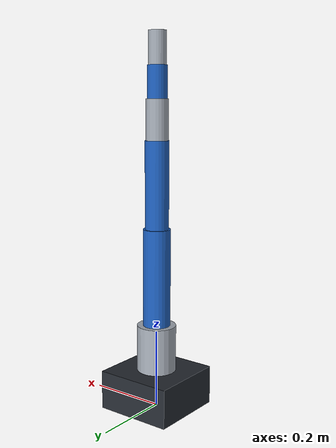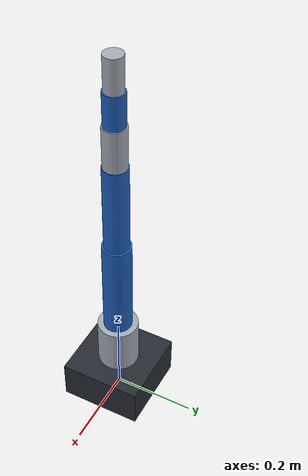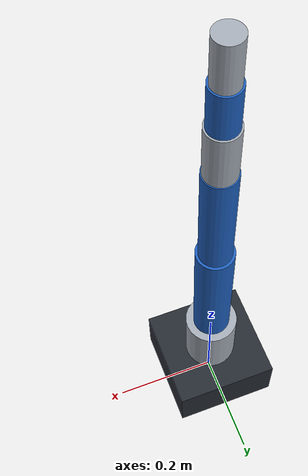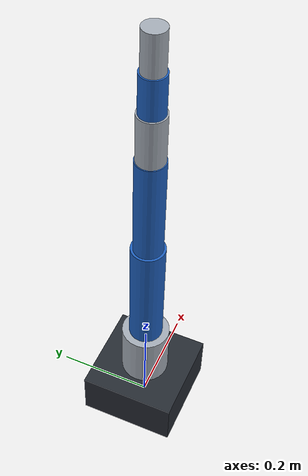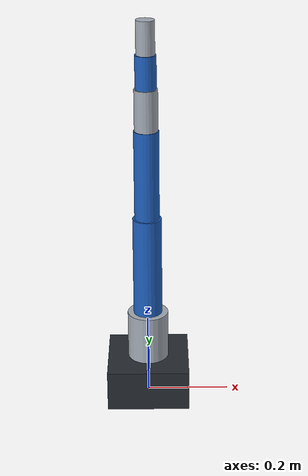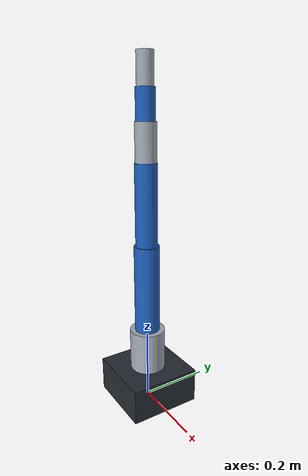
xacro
<?xml version="1.0"?>
<robot xmlns:xacro="http://www.ros.org/wiki/xacro" name="demo_arm">
  <xacro:arg name="hardware" default="mock"/>
  <xacro:arg name="controllers_file" default=""/>
  <xacro:arg name="mount_xyz" default="0 0 0"/>
  <xacro:arg name="mount_rpy" default="0 0 0"/>
  <xacro:include filename="$(find arm_description)/urdf/materials.xacro"/>
  <xacro:property name="hardware" value="$(arg hardware)"/>
  <material name="blue"><color rgba="0.12 0.38 0.75 1"/></material>
  <material name="silver"><color rgba="0.65 0.68 0.72 1"/></material>
  <material name="dark"><color rgba="0.15 0.17 0.20 1"/></material>

  <link name="world"/>
  <link name="base_link">
    <visual><origin xyz="0 0 0.05"/><geometry><box size="0.20 0.20 0.10"/></geometry><material name="dark"/></visual>
    <collision><origin xyz="0 0 0.05"/><geometry><box size="0.20 0.20 0.10"/></geometry></collision>
    <inertial><origin xyz="0 0 0.05"/><mass value="3"/><inertia ixx="0.0125" ixy="0" ixz="0" iyy="0.0125" iyz="0" izz="0.02"/></inertial>
  </link>
  <joint name="world_joint" type="fixed"><parent link="world"/><child link="base_link"/><origin xyz="$(arg mount_xyz)" rpy="$(arg mount_rpy)"/></joint>

  <xacro:macro name="arm_segment" params="index parent offset length radius mass axis color">
    <link name="link_${index}">
      <visual><origin xyz="0 0 ${length / 2}"/><geometry><cylinder radius="${radius}" length="${length}"/></geometry><material name="${color}"/></visual>
      <collision><origin xyz="0 0 ${length / 2}"/><geometry><cylinder radius="${radius}" length="${length}"/></geometry></collision>
      <inertial>
        <origin xyz="0 0 ${length / 2}"/><mass value="${mass}"/>
        <inertia ixx="${mass * (3 * radius * radius + length * length) / 12}" ixy="0" ixz="0"
                 iyy="${mass * (3 * radius * radius + length * length) / 12}" iyz="0" izz="${mass * radius * radius / 2}"/>
      </inertial>
    </link>
    <joint name="joint_${index}" type="revolute">
      <parent link="${parent}"/><child link="link_${index}"/>
      <origin xyz="0 0 ${offset}"/><axis xyz="${axis}"/>
      <limit lower="-2.8" upper="2.8" effort="80" velocity="1.5"/>
      <dynamics damping="0.5" friction="0.1"/>
    </joint>
  </xacro:macro>
  <xacro:arm_segment index="1" parent="base_link" offset="0.10" length="0.12" radius="0.05" mass="1.0" axis="0 0 1" color="silver"/>
  <xacro:arm_segment index="2" parent="link_1" offset="0.12" length="0.25" radius="0.035" mass="1.0" axis="0 1 0" color="blue"/>
  <xacro:arm_segment index="3" parent="link_2" offset="0.25" length="0.22" radius="0.03" mass="0.8" axis="0 1 0" color="blue"/>
  <xacro:arm_segment index="4" parent="link_3" offset="0.22" length="0.10" radius="0.028" mass="0.3" axis="1 0 0" color="silver"/>
  <xacro:arm_segment index="5" parent="link_4" offset="0.10" length="0.08" radius="0.025" mass="0.2" axis="0 1 0" color="blue"/>
  <xacro:arm_segment index="6" parent="link_5" offset="0.08" length="0.08" radius="0.022" mass="0.15" axis="0 0 1" color="silver"/>
  <xacro:gazebo_surface link="base_link" color="0.15 0.17 0.20 1"/>
  <xacro:gazebo_surface link="link_1" color="0.65 0.68 0.72 1" metalness="0.6"/>
  <xacro:gazebo_surface link="link_2" color="0.12 0.38 0.75 1"/>
  <xacro:gazebo_surface link="link_3" color="0.12 0.38 0.75 1"/>
  <xacro:gazebo_surface link="link_4" color="0.65 0.68 0.72 1" metalness="0.6"/>
  <xacro:gazebo_surface link="link_5" color="0.12 0.38 0.75 1"/>
  <xacro:gazebo_surface link="link_6" color="0.65 0.68 0.72 1" metalness="0.6"/>
  <link name="tool0"/>
  <joint name="tool_joint" type="fixed"><parent link="link_6"/><child link="tool0"/><origin xyz="0 0 0.08"/></joint>

  <xacro:macro name="control_joint" params="index">
    <joint name="joint_${index}">
      <command_interface name="position"/>
      <state_interface name="position"><param name="initial_value">0.0</param></state_interface>
      <state_interface name="velocity"/>
    </joint>
  </xacro:macro>
  <ros2_control name="ArmSystem" type="system">
    <hardware>
      <xacro:if value="${hardware == 'gazebo'}"><plugin>gz_ros2_control/GazeboSimSystem</plugin></xacro:if>
      <xacro:unless value="${hardware == 'gazebo'}"><plugin>mock_components/GenericSystem</plugin></xacro:unless>
    </hardware>
    <xacro:control_joint index="1"/><xacro:control_joint index="2"/>
    <xacro:control_joint index="3"/><xacro:control_joint index="4"/>
    <xacro:control_joint index="5"/><xacro:control_joint index="6"/>
  </ros2_control>
  <xacro:if value="${hardware == 'gazebo'}">
    <gazebo>
      <plugin filename="libgz_ros2_control-system.so" name="gz_ros2_control::GazeboSimROS2ControlPlugin">
        <parameters>$(arg controllers_file)</parameters>
        <!-- controller_manager times each update by its node clock, not by the
             simulation time it is given; gz_relay sends it every step. -->
        <ros><remapping>/clock:=/controller_manager/clock</remapping></ros>
      </plugin>
    </gazebo>
  </xacro:if>
</robot>
